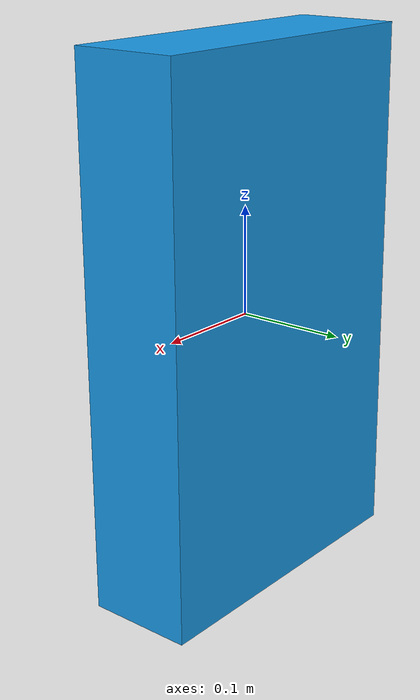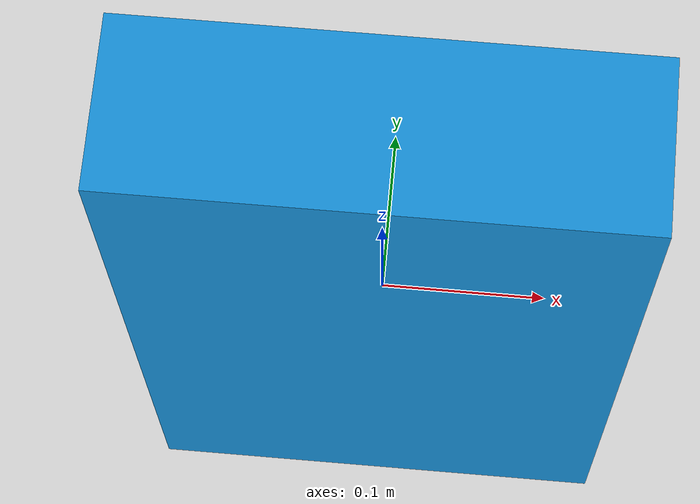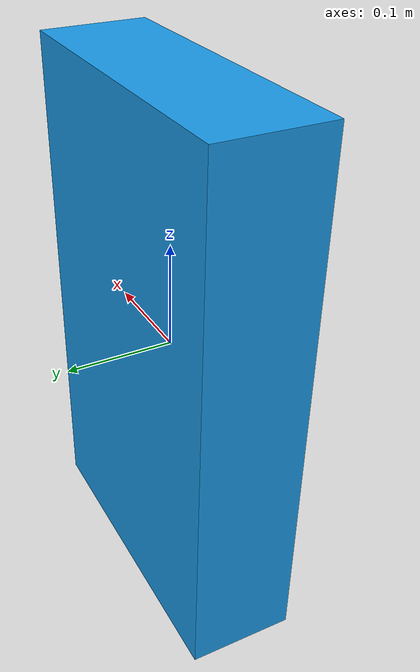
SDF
<?xml version="1.0" ?>

<sdf version='1.6'>
  <model name="domino">
  <static>false</static>
    <link name ="base" >
      <pose frame=''>0 0 0 0 0 0</pose>
      <inertial>
          <pose frame=''>0 0 0.09 0 0 0</pose>
          <mass>1.8</mass>
          <inertia>
              <ixx>0.108</ixx>
              <ixy>0</ixy>
              <ixz>0</ixz>
              <iyy>0.108</iyy>
              <iyz>0</iyz>
              <izz>0.054</izz>
          </inertia>
      </inertial>

      <visual name='visual_base_link'>

          <geometry>

                  <box><size>0.3 0.1 0.5</size></box>
                  <scale>1 1 1</scale>

          </geometry>
          <material>
              <ambient>0.1 0.6 0.9 1</ambient>
              <diffuse>0.1 0.6 0.9 1</diffuse>
              <specular>0.1 0.6 0.9 1</specular>
              <emissive>0.1 0.6 0.9 0</emissive>
          </material>

      </visual>
      <collision name='collision_base_link'>

          <geometry>

                  <box><size>0.1 0.2 0.5</size></box>
                  <scale>1 1 1</scale>

          </geometry>
      </collision>
    </link>

 </model>

</sdf>
